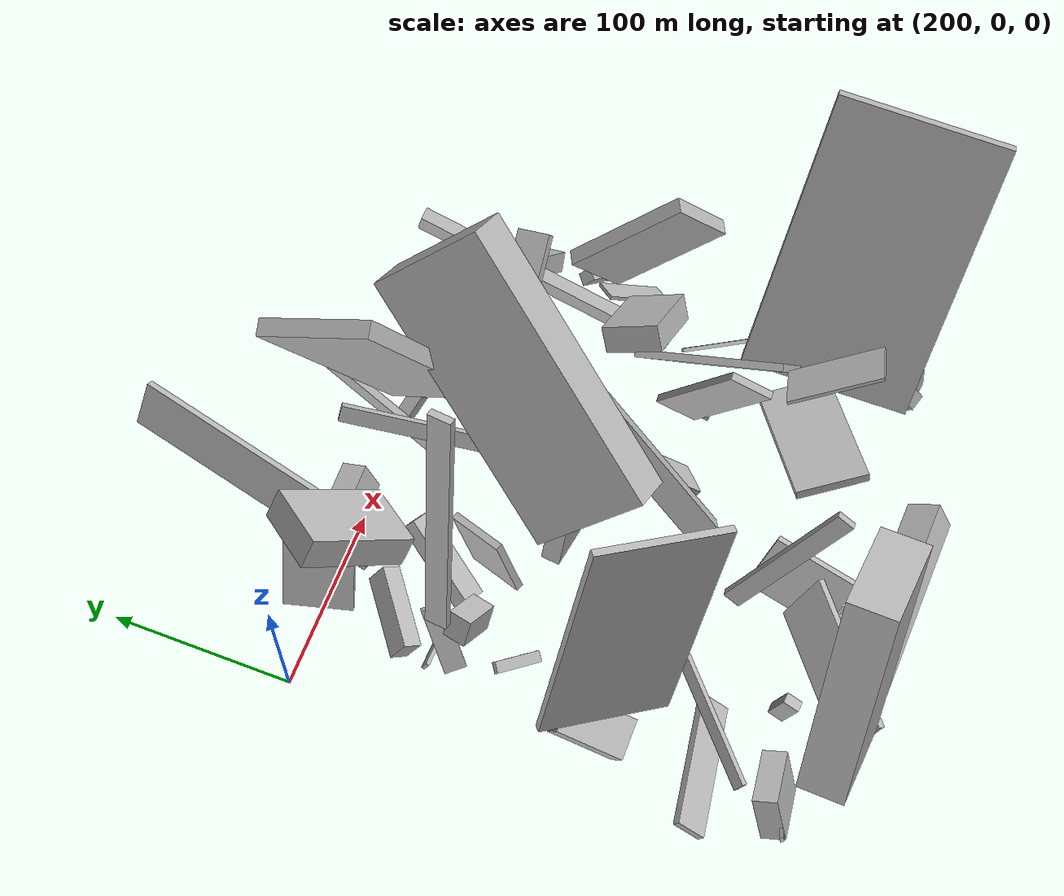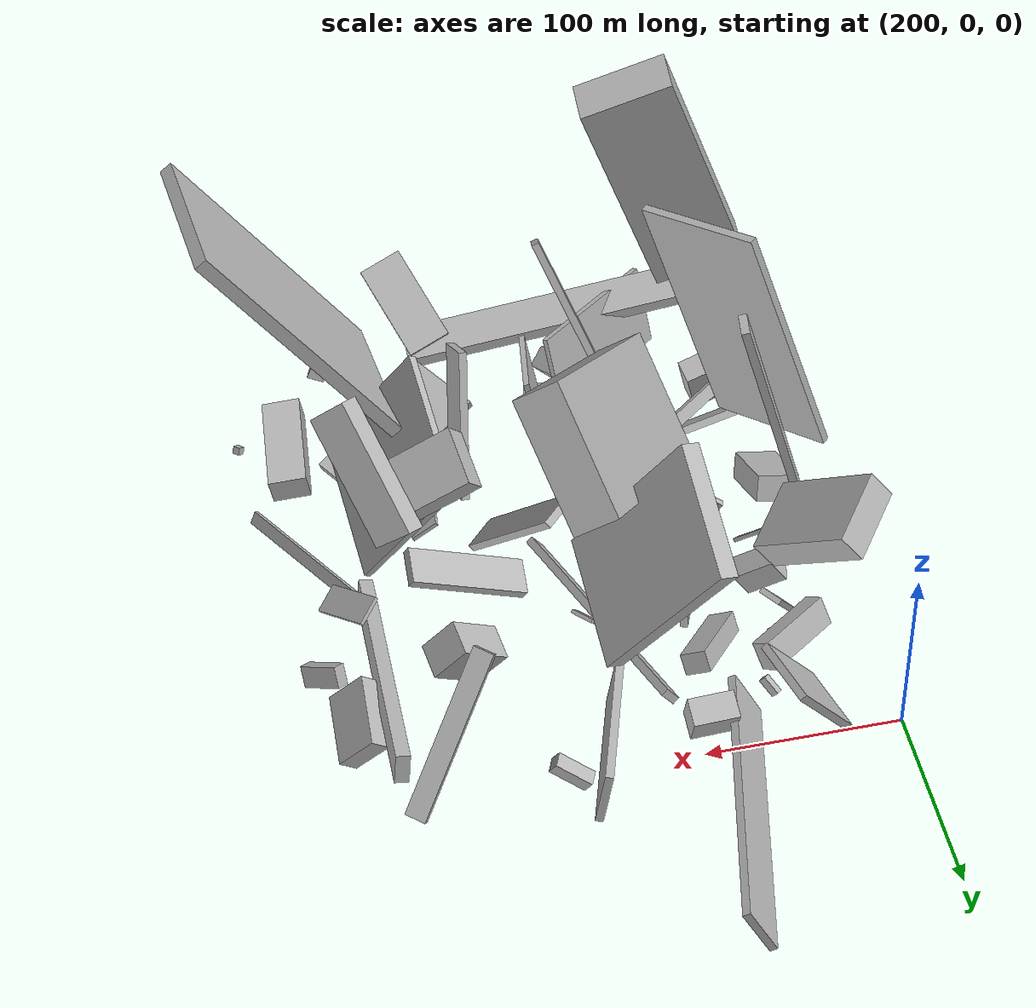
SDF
<sdf version="1.6">
 <world name="default">
  <model name="building_5">
   <static>0</static>
   <pose>366.93796762581417 -129.00037148774234 48.577309955742344 -2.7679729090759224 -0.8304152403304764 2.0013015284365134</pose>
   <link name="link">
    <gravity>0</gravity>
    <pose>0 0 2.0 0 0 0</pose>
    <collision name="collision"><geometry><box><size>98 19 4</size></box></geometry></collision>
    <visual name="visual">
     <cast_shadows>0</cast_shadows>
     <geometry><box><size>98 19 4</size></box></geometry>
     <material>
      <script>
       <uri>model://HANNAS_wall/materials/scripts</uri>
       <uri>model://HANNAS_wall/materials/textures</uri>
       <name>vrc/HANNAS_wall</name>
      </script>
     </material>
    </visual>
   </link>
  </model>
  <model name="building_7">
   <static>0</static>
   <pose>348.01590261600785 -30.969448456318037 88.29815140041796 -0.30418612962401714 0.4548619788155713 1.6481128041305757</pose>
   <link name="link">
    <gravity>0</gravity>
    <pose>0 0 59.0 0 0 0</pose>
    <collision name="collision"><geometry><box><size>64 9 118</size></box></geometry></collision>
    <visual name="visual">
     <cast_shadows>0</cast_shadows>
     <geometry><box><size>64 9 118</size></box></geometry>
     <material>
      <script>
       <uri>model://HANNAS_wall/materials/scripts</uri>
       <uri>model://HANNAS_wall/materials/textures</uri>
       <name>vrc/HANNAS_wall</name>
      </script>
     </material>
    </visual>
   </link>
  </model>
  <model name="building_13">
   <static>0</static>
   <pose>303.5498627580629 -202.1273397119324 62.30362091075866 0.4281541827251762 -0.4826214191146808 1.4194697516153478</pose>
   <link name="link">
    <gravity>0</gravity>
    <pose>0 0 42.5 0 0 0</pose>
    <collision name="collision"><geometry><box><size>10 4 85</size></box></geometry></collision>
    <visual name="visual">
     <cast_shadows>0</cast_shadows>
     <geometry><box><size>10 4 85</size></box></geometry>
     <material>
      <script>
       <uri>model://HANNAS_wall/materials/scripts</uri>
       <uri>model://HANNAS_wall/materials/textures</uri>
       <name>vrc/HANNAS_wall</name>
      </script>
     </material>
    </visual>
   </link>
  </model>
  <model name="building_14">
   <static>0</static>
   <pose>338.52106458638247 -30.991828954077725 29.410397892295503 -1.338100842568727 -0.15729105979023997 -0.32407212823067116</pose>
   <link name="link">
    <gravity>0</gravity>
    <pose>0 0 46.5 0 0 0</pose>
    <collision name="collision"><geometry><box><size>4 26 93</size></box></geometry></collision>
    <visual name="visual">
     <cast_shadows>0</cast_shadows>
     <geometry><box><size>4 26 93</size></box></geometry>
     <material>
      <script>
       <uri>model://HANNAS_wall/materials/scripts</uri>
       <uri>model://HANNAS_wall/materials/textures</uri>
       <name>vrc/HANNAS_wall</name>
      </script>
     </material>
    </visual>
   </link>
  </model>
  <model name="building_16">
   <static>0</static>
   <pose>253.31720954136728 2.3002131281182394 39.780277177644976 -0.01482352069662092 -0.9229812678496938 0.27385160361569905</pose>
   <link name="link">
    <gravity>0</gravity>
    <pose>0 0 2.0 0 0 0</pose>
    <collision name="collision"><geometry><box><size>47 37 4</size></box></geometry></collision>
    <visual name="visual">
     <cast_shadows>0</cast_shadows>
     <geometry><box><size>47 37 4</size></box></geometry>
     <material>
      <script>
       <uri>model://HANNAS_wall/materials/scripts</uri>
       <uri>model://HANNAS_wall/materials/textures</uri>
       <name>vrc/HANNAS_wall</name>
      </script>
     </material>
    </visual>
   </link>
  </model>
  <model name="building_18">
   <static>0</static>
   <pose>255.98294651979657 -143.66773095367154 20.143360686291402 -1.0476216306297381 0.12492093657156894 -1.8495851556932774</pose>
   <link name="link">
    <gravity>0</gravity>
    <pose>0 0 32.5 0 0 0</pose>
    <collision name="collision"><geometry><box><size>4 4 65</size></box></geometry></collision>
    <visual name="visual">
     <cast_shadows>0</cast_shadows>
     <geometry><box><size>4 4 65</size></box></geometry>
     <material>
      <script>
       <uri>model://HANNAS_wall/materials/scripts</uri>
       <uri>model://HANNAS_wall/materials/textures</uri>
       <name>vrc/HANNAS_wall</name>
      </script>
     </material>
    </visual>
   </link>
  </model>
  <model name="building_19">
   <static>0</static>
   <pose>233.4228596078339 -72.72268597515381 78.13247146226202 -0.2635942836586963 -0.09601195973758359 -1.693818515565837</pose>
   <link name="link">
    <gravity>0</gravity>
    <pose>0 0 75.0 0 0 0</pose>
    <collision name="collision"><geometry><box><size>12 4 150</size></box></geometry></collision>
    <visual name="visual">
     <cast_shadows>0</cast_shadows>
     <geometry><box><size>12 4 150</size></box></geometry>
     <material>
      <script>
       <uri>model://HANNAS_wall/materials/scripts</uri>
       <uri>model://HANNAS_wall/materials/textures</uri>
       <name>vrc/HANNAS_wall</name>
      </script>
     </material>
    </visual>
   </link>
  </model>
  <model name="building_20">
   <static>0</static>
   <pose>393.7164438287608 -140.93135978355008 61.7795820910733 0.16048409968176683 0.5082068844359077 -1.4412710564936078</pose>
   <link name="link">
    <gravity>0</gravity>
    <pose>0 0 37.5 0 0 0</pose>
    <collision name="collision"><geometry><box><size>24 4 75</size></box></geometry></collision>
    <visual name="visual">
     <cast_shadows>0</cast_shadows>
     <geometry><box><size>24 4 75</size></box></geometry>
     <material>
      <script>
       <uri>model://HANNAS_wall/materials/scripts</uri>
       <uri>model://HANNAS_wall/materials/textures</uri>
       <name>vrc/HANNAS_wall</name>
      </script>
     </material>
    </visual>
   </link>
  </model>
  <model name="building_21">
   <static>0</static>
   <pose>230.0842074939692 -208.09408159664707 22.94398390310819 -2.2755186249988264 -0.14356960257799212 -2.9904671393988087</pose>
   <link name="link">
    <gravity>0</gravity>
    <pose>0 0 9.0 0 0 0</pose>
    <collision name="collision"><geometry><box><size>73 4 18</size></box></geometry></collision>
    <visual name="visual">
     <cast_shadows>0</cast_shadows>
     <geometry><box><size>73 4 18</size></box></geometry>
     <material>
      <script>
       <uri>model://HANNAS_wall/materials/scripts</uri>
       <uri>model://HANNAS_wall/materials/textures</uri>
       <name>vrc/HANNAS_wall</name>
      </script>
     </material>
    </visual>
   </link>
  </model>
  <model name="building_22">
   <static>0</static>
   <pose>237.8671128048006 -275.3264804529206 78.6715799147138 0.3375347821358153 0.08022363856202351 1.5163037522461518</pose>
   <link name="link">
    <gravity>0</gravity>
    <pose>0 0 66.5 0 0 0</pose>
    <collision name="collision"><geometry><box><size>24 49 133</size></box></geometry></collision>
    <visual name="visual">
     <cast_shadows>0</cast_shadows>
     <geometry><box><size>24 49 133</size></box></geometry>
     <material>
      <script>
       <uri>model://HANNAS_wall/materials/scripts</uri>
       <uri>model://HANNAS_wall/materials/textures</uri>
       <name>vrc/HANNAS_wall</name>
      </script>
     </material>
    </visual>
   </link>
  </model>
  <model name="building_27">
   <static>0</static>
   <pose>423.2838466854882 -208.67709415920035 81.82649826413133 0.1413094886405997 0.6122159057931443 0.15823957279419285</pose>
   <link name="link">
    <gravity>0</gravity>
    <pose>0 0 75.0 0 0 0</pose>
    <collision name="collision"><geometry><box><size>7 88 150</size></box></geometry></collision>
    <visual name="visual">
     <cast_shadows>0</cast_shadows>
     <geometry><box><size>7 88 150</size></box></geometry>
     <material>
      <script>
       <uri>model://HANNAS_wall/materials/scripts</uri>
       <uri>model://HANNAS_wall/materials/textures</uri>
       <name>vrc/HANNAS_wall</name>
      </script>
     </material>
    </visual>
   </link>
  </model>
  <model name="building_30">
   <static>0</static>
   <pose>433.81226036326905 -79.0754404706614 102.59673930444904 -0.09920087051929398 -0.8556372474861931 2.1366737547197134</pose>
   <link name="link">
    <gravity>0</gravity>
    <pose>0 0 34.5 0 0 0</pose>
    <collision name="collision"><geometry><box><size>38 8 69</size></box></geometry></collision>
    <visual name="visual">
     <cast_shadows>0</cast_shadows>
     <geometry><box><size>38 8 69</size></box></geometry>
     <material>
      <script>
       <uri>model://HANNAS_wall/materials/scripts</uri>
       <uri>model://HANNAS_wall/materials/textures</uri>
       <name>vrc/HANNAS_wall</name>
      </script>
     </material>
    </visual>
   </link>
  </model>
  <model name="building_31">
   <static>0</static>
   <pose>323.8296388341633 -179.14422340837856 81.77296150881438 -0.615209230431995 0.5990761632010638 0.41969506388018735</pose>
   <link name="link">
    <gravity>0</gravity>
    <pose>0 0 71.0 0 0 0</pose>
    <collision name="collision"><geometry><box><size>9 15 142</size></box></geometry></collision>
    <visual name="visual">
     <cast_shadows>0</cast_shadows>
     <geometry><box><size>9 15 142</size></box></geometry>
     <material>
      <script>
       <uri>model://HANNAS_wall/materials/scripts</uri>
       <uri>model://HANNAS_wall/materials/textures</uri>
       <name>vrc/HANNAS_wall</name>
      </script>
     </material>
    </visual>
   </link>
  </model>
  <model name="building_32">
   <static>0</static>
   <pose>283.65210716667843 -90.75363850722815 48.33629093482091 -3.0502330619504185 1.1958537590814935 -1.8912091224020218</pose>
   <link name="link">
    <gravity>0</gravity>
    <pose>0 0 17.5 0 0 0</pose>
    <collision name="collision"><geometry><box><size>37 4 35</size></box></geometry></collision>
    <visual name="visual">
     <cast_shadows>0</cast_shadows>
     <geometry><box><size>37 4 35</size></box></geometry>
     <material>
      <script>
       <uri>model://HANNAS_wall/materials/scripts</uri>
       <uri>model://HANNAS_wall/materials/textures</uri>
       <name>vrc/HANNAS_wall</name>
      </script>
     </material>
    </visual>
   </link>
  </model>
  <model name="building_34">
   <static>0</static>
   <pose>300.5026610406594 -131.03983425655088 114.70064448822038 -0.7383841029522928 -0.7566949573000991 -1.1854946712340908</pose>
   <link name="link">
    <gravity>0</gravity>
    <pose>0 0 75.0 0 0 0</pose>
    <collision name="collision"><geometry><box><size>67 23 150</size></box></geometry></collision>
    <visual name="visual">
     <cast_shadows>0</cast_shadows>
     <geometry><box><size>67 23 150</size></box></geometry>
     <material>
      <script>
       <uri>model://HANNAS_wall/materials/scripts</uri>
       <uri>model://HANNAS_wall/materials/textures</uri>
       <name>vrc/HANNAS_wall</name>
      </script>
     </material>
    </visual>
   </link>
  </model>
  <model name="building_36">
   <static>0</static>
   <pose>277.0481197221919 -16.38829590633877 21.1454384522796 -1.436703308358964 -1.0622199861069026 -0.3310575167198313</pose>
   <link name="link">
    <gravity>0</gravity>
    <pose>0 0 75.0 0 0 0</pose>
    <collision name="collision"><geometry><box><size>28 4 150</size></box></geometry></collision>
    <visual name="visual">
     <cast_shadows>0</cast_shadows>
     <geometry><box><size>28 4 150</size></box></geometry>
     <material>
      <script>
       <uri>model://HANNAS_wall/materials/scripts</uri>
       <uri>model://HANNAS_wall/materials/textures</uri>
       <name>vrc/HANNAS_wall</name>
      </script>
     </material>
    </visual>
   </link>
  </model>
  <model name="building_43">
   <static>0</static>
   <pose>422.1462973297976 -123.29589621330148 56.18898946469028 -0.9815457062298355 -0.9810275654083641 2.7188622036323804</pose>
   <link name="link">
    <gravity>0</gravity>
    <pose>0 0 39.5 0 0 0</pose>
    <collision name="collision"><geometry><box><size>84 4 79</size></box></geometry></collision>
    <visual name="visual">
     <cast_shadows>0</cast_shadows>
     <geometry><box><size>84 4 79</size></box></geometry>
     <material>
      <script>
       <uri>model://HANNAS_wall/materials/scripts</uri>
       <uri>model://HANNAS_wall/materials/textures</uri>
       <name>vrc/HANNAS_wall</name>
      </script>
     </material>
    </visual>
   </link>
  </model>
  <model name="building_44">
   <static>0</static>
   <pose>428.2304037989306 -14.65644072804095 34.449330334265674 1.7291601171601512 0.7612280484340336 -2.1265610803290453</pose>
   <link name="link">
    <gravity>0</gravity>
    <pose>0 0 5.5 0 0 0</pose>
    <collision name="collision"><geometry><box><size>4 88 11</size></box></geometry></collision>
    <visual name="visual">
     <cast_shadows>0</cast_shadows>
     <geometry><box><size>4 88 11</size></box></geometry>
     <material>
      <script>
       <uri>model://HANNAS_wall/materials/scripts</uri>
       <uri>model://HANNAS_wall/materials/textures</uri>
       <name>vrc/HANNAS_wall</name>
      </script>
     </material>
    </visual>
   </link>
  </model>
  <model name="building_50">
   <static>0</static>
   <pose>396.22445277598064 -281.97709241901384 33.79744834901935 -1.3875249333521755 0.5524911589988926 1.6293658633441293</pose>
   <link name="link">
    <gravity>0</gravity>
    <pose>0 0 75.0 0 0 0</pose>
    <collision name="collision"><geometry><box><size>18 17 150</size></box></geometry></collision>
    <visual name="visual">
     <cast_shadows>0</cast_shadows>
     <geometry><box><size>18 17 150</size></box></geometry>
     <material>
      <script>
       <uri>model://HANNAS_wall/materials/scripts</uri>
       <uri>model://HANNAS_wall/materials/textures</uri>
       <name>vrc/HANNAS_wall</name>
      </script>
     </material>
    </visual>
   </link>
  </model>
  <model name="building_66">
   <static>0</static>
   <pose>229.3548520375216 -154.1556440836538 16.619047999451578 -0.4320038193746379 0.16477779496881953 3.138801024452244</pose>
   <link name="link">
    <gravity>0</gravity>
    <pose>0 0 7.0 0 0 0</pose>
    <collision name="collision"><geometry><box><size>22 38 14</size></box></geometry></collision>
    <visual name="visual">
     <cast_shadows>0</cast_shadows>
     <geometry><box><size>22 38 14</size></box></geometry>
     <material>
      <script>
       <uri>model://HANNAS_wall/materials/scripts</uri>
       <uri>model://HANNAS_wall/materials/textures</uri>
       <name>vrc/HANNAS_wall</name>
      </script>
     </material>
    </visual>
   </link>
  </model>
  <model name="building_75">
   <static>0</static>
   <pose>308.8115781653693 -109.81914074569218 43.379813627418116 -0.01760692053308227 0.3444306415014796 -0.09398003866354587</pose>
   <link name="link">
    <gravity>0</gravity>
    <pose>0 0 33.5 0 0 0</pose>
    <collision name="collision"><geometry><box><size>30 10 67</size></box></geometry></collision>
    <visual name="visual">
     <cast_shadows>0</cast_shadows>
     <geometry><box><size>30 10 67</size></box></geometry>
     <material>
      <script>
       <uri>model://HANNAS_wall/materials/scripts</uri>
       <uri>model://HANNAS_wall/materials/textures</uri>
       <name>vrc/HANNAS_wall</name>
      </script>
     </material>
    </visual>
   </link>
  </model>
  <model name="building_76">
   <static>0</static>
   <pose>444.4208361729633 -192.3690520159992 26.43797393648901 1.2127447557770785 -0.09501730758960644 -0.9722656896024466</pose>
   <link name="link">
    <gravity>0</gravity>
    <pose>0 0 38.0 0 0 0</pose>
    <collision name="collision"><geometry><box><size>39 5 76</size></box></geometry></collision>
    <visual name="visual">
     <cast_shadows>0</cast_shadows>
     <geometry><box><size>39 5 76</size></box></geometry>
     <material>
      <script>
       <uri>model://HANNAS_wall/materials/scripts</uri>
       <uri>model://HANNAS_wall/materials/textures</uri>
       <name>vrc/HANNAS_wall</name>
      </script>
     </material>
    </visual>
   </link>
  </model>
  <model name="building_77">
   <static>0</static>
   <pose>453.4701211370963 -46.735038114236744 42.74802372080548 2.011169089144791 -1.3036769754141946 -2.06478779055746</pose>
   <link name="link">
    <gravity>0</gravity>
    <pose>0 0 3.5 0 0 0</pose>
    <collision name="collision"><geometry><box><size>15 150 7</size></box></geometry></collision>
    <visual name="visual">
     <cast_shadows>0</cast_shadows>
     <geometry><box><size>15 150 7</size></box></geometry>
     <material>
      <script>
       <uri>model://HANNAS_wall/materials/scripts</uri>
       <uri>model://HANNAS_wall/materials/textures</uri>
       <name>vrc/HANNAS_wall</name>
      </script>
     </material>
    </visual>
   </link>
  </model>
  <model name="building_81">
   <static>0</static>
   <pose>338.8439573621389 -51.97973178841937 50.03166643406547 0.6355382492141831 -0.23349661284458312 1.8123372507760633</pose>
   <link name="link">
    <gravity>0</gravity>
    <pose>0 0 4.5 0 0 0</pose>
    <collision name="collision"><geometry><box><size>150 4 9</size></box></geometry></collision>
    <visual name="visual">
     <cast_shadows>0</cast_shadows>
     <geometry><box><size>150 4 9</size></box></geometry>
     <material>
      <script>
       <uri>model://HANNAS_wall/materials/scripts</uri>
       <uri>model://HANNAS_wall/materials/textures</uri>
       <name>vrc/HANNAS_wall</name>
      </script>
     </material>
    </visual>
   </link>
  </model>
  <model name="building_88">
   <static>0</static>
   <pose>494.7210577142171 -247.55431232617036 7.970193450586371 -0.5256505137254391 -0.12503597108748857 2.3441400192682407</pose>
   <link name="link">
    <gravity>0</gravity>
    <pose>0 0 2.0 0 0 0</pose>
    <collision name="collision"><geometry><box><size>4 4 4</size></box></geometry></collision>
    <visual name="visual">
     <cast_shadows>0</cast_shadows>
     <geometry><box><size>4 4 4</size></box></geometry>
     <material>
      <script>
       <uri>model://HANNAS_wall/materials/scripts</uri>
       <uri>model://HANNAS_wall/materials/textures</uri>
       <name>vrc/HANNAS_wall</name>
      </script>
     </material>
    </visual>
   </link>
  </model>
  <model name="building_96">
   <static>0</static>
   <pose>247.39036681998553 -165.81352190068662 123.0658365702576 0.8723647912762169 -1.261299031339631 -0.19804682895105832</pose>
   <link name="link">
    <gravity>0</gravity>
    <pose>0 0 2.0 0 0 0</pose>
    <collision name="collision"><geometry><box><size>142 69 4</size></box></geometry></collision>
    <visual name="visual">
     <cast_shadows>0</cast_shadows>
     <geometry><box><size>142 69 4</size></box></geometry>
     <material>
      <script>
       <uri>model://HANNAS_wall/materials/scripts</uri>
       <uri>model://HANNAS_wall/materials/textures</uri>
       <name>vrc/HANNAS_wall</name>
      </script>
     </material>
    </visual>
   </link>
  </model>
  <model name="building_101">
   <static>0</static>
   <pose>405.6891085910688 -215.27437296252435 126.78397519132474 0.5057825276663976 -0.319359970605428 -2.9110335004053156</pose>
   <link name="link">
    <gravity>0</gravity>
    <pose>0 0 1.0 0 0 0</pose>
    <collision name="collision"><geometry><box><size>22 50 2</size></box></geometry></collision>
    <visual name="visual">
     <cast_shadows>0</cast_shadows>
     <geometry><box><size>22 50 2</size></box></geometry>
     <material>
      <script>
       <uri>model://HANNAS_wall/materials/scripts</uri>
       <uri>model://HANNAS_wall/materials/textures</uri>
       <name>vrc/HANNAS_wall</name>
      </script>
     </material>
    </visual>
   </link>
  </model>
  <model name="building_102">
   <static>0</static>
   <pose>334.5742088772754 -102.46947358058483 21.509685683453995 -3.0150077298598363 -0.5082029796953539 0.8732665417859603</pose>
   <link name="link">
    <gravity>0</gravity>
    <pose>0 0 1.0 0 0 0</pose>
    <collision name="collision"><geometry><box><size>2 2 2</size></box></geometry></collision>
    <visual name="visual">
     <cast_shadows>0</cast_shadows>
     <geometry><box><size>2 2 2</size></box></geometry>
     <material>
      <script>
       <uri>model://HANNAS_wall/materials/scripts</uri>
       <uri>model://HANNAS_wall/materials/textures</uri>
       <name>vrc/HANNAS_wall</name>
      </script>
     </material>
    </visual>
   </link>
  </model>
  <model name="building_103">
   <static>0</static>
   <pose>472.9114905393947 -31.384596396739227 23.98224552280967 -0.3163307415577276 -0.6979741669103613 0.1718838482530008</pose>
   <link name="link">
    <gravity>0</gravity>
    <pose>0 0 12.0 0 0 0</pose>
    <collision name="collision"><geometry><box><size>11 36 24</size></box></geometry></collision>
    <visual name="visual">
     <cast_shadows>0</cast_shadows>
     <geometry><box><size>11 36 24</size></box></geometry>
     <material>
      <script>
       <uri>model://HANNAS_wall/materials/scripts</uri>
       <uri>model://HANNAS_wall/materials/textures</uri>
       <name>vrc/HANNAS_wall</name>
      </script>
     </material>
    </visual>
   </link>
  </model>
  <model name="building_107">
   <static>0</static>
   <pose>245.5733513215945 -68.73409851793642 22.42397693010564 -0.19544770180164475 -0.9141619872797258 0.8413491688812188</pose>
   <link name="link">
    <gravity>0</gravity>
    <pose>0 0 1.5 0 0 0</pose>
    <collision name="collision"><geometry><box><size>41 12 3</size></box></geometry></collision>
    <visual name="visual">
     <cast_shadows>0</cast_shadows>
     <geometry><box><size>41 12 3</size></box></geometry>
     <material>
      <script>
       <uri>model://HANNAS_wall/materials/scripts</uri>
       <uri>model://HANNAS_wall/materials/textures</uri>
       <name>vrc/HANNAS_wall</name>
      </script>
     </material>
    </visual>
   </link>
  </model>
  <model name="building_120">
   <static>0</static>
   <pose>295.6655389697771 -261.5399872598388 39.72745301143922 1.2681636249010337 0.06684753229733487 -2.4420815225267525</pose>
   <link name="link">
    <gravity>0</gravity>
    <pose>0 0 1.5 0 0 0</pose>
    <collision name="collision"><geometry><box><size>80 44 3</size></box></geometry></collision>
    <visual name="visual">
     <cast_shadows>0</cast_shadows>
     <geometry><box><size>80 44 3</size></box></geometry>
     <material>
      <script>
       <uri>model://HANNAS_wall/materials/scripts</uri>
       <uri>model://HANNAS_wall/materials/textures</uri>
       <name>vrc/HANNAS_wall</name>
      </script>
     </material>
    </visual>
   </link>
  </model>
  <model name="building_122">
   <static>0</static>
   <pose>235.64141680731746 -249.07616619788706 22.92016150430226 2.8483417028690163 -0.27981532750121985 -1.3710653168772926</pose>
   <link name="link">
    <gravity>0</gravity>
    <pose>0 0 16.5 0 0 0</pose>
    <collision name="collision"><geometry><box><size>13 31 33</size></box></geometry></collision>
    <visual name="visual">
     <cast_shadows>0</cast_shadows>
     <geometry><box><size>13 31 33</size></box></geometry>
     <material>
      <script>
       <uri>model://HANNAS_wall/materials/scripts</uri>
       <uri>model://HANNAS_wall/materials/textures</uri>
       <name>vrc/HANNAS_wall</name>
      </script>
     </material>
    </visual>
   </link>
  </model>
  <model name="building_124">
   <static>0</static>
   <pose>483.47174510101644 -76.80306908297806 18.072619734066222 -0.6436931812952394 0.9905185696879125 1.7130827055113165</pose>
   <link name="link">
    <gravity>0</gravity>
    <pose>0 0 11.0 0 0 0</pose>
    <collision name="collision"><geometry><box><size>11 7 22</size></box></geometry></collision>
    <visual name="visual">
     <cast_shadows>0</cast_shadows>
     <geometry><box><size>11 7 22</size></box></geometry>
     <material>
      <script>
       <uri>model://HANNAS_wall/materials/scripts</uri>
       <uri>model://HANNAS_wall/materials/textures</uri>
       <name>vrc/HANNAS_wall</name>
      </script>
     </material>
    </visual>
   </link>
  </model>
  <model name="building_138">
   <static>0</static>
   <pose>290.8009034595328 -54.49058408203257 18.339728929442895 1.1153273699770911 0.3967219456418036 -2.140968309277643</pose>
   <link name="link">
    <gravity>0</gravity>
    <pose>0 0 6.5 0 0 0</pose>
    <collision name="collision"><geometry><box><size>51 11 13</size></box></geometry></collision>
    <visual name="visual">
     <cast_shadows>0</cast_shadows>
     <geometry><box><size>51 11 13</size></box></geometry>
     <material>
      <script>
       <uri>model://HANNAS_wall/materials/scripts</uri>
       <uri>model://HANNAS_wall/materials/textures</uri>
       <name>vrc/HANNAS_wall</name>
      </script>
     </material>
    </visual>
   </link>
  </model>
  <model name="building_145">
   <static>0</static>
   <pose>240.59090301444314 -112.36338520977301 31.73666527410242 1.093368988491158 -0.7337006371703388 2.526810928665132</pose>
   <link name="link">
    <gravity>0</gravity>
    <pose>0 0 3.0 0 0 0</pose>
    <collision name="collision"><geometry><box><size>36 2 6</size></box></geometry></collision>
    <visual name="visual">
     <cast_shadows>0</cast_shadows>
     <geometry><box><size>36 2 6</size></box></geometry>
     <material>
      <script>
       <uri>model://HANNAS_wall/materials/scripts</uri>
       <uri>model://HANNAS_wall/materials/textures</uri>
       <name>vrc/HANNAS_wall</name>
      </script>
     </material>
    </visual>
   </link>
  </model>
  <model name="building_151">
   <static>0</static>
   <pose>434.8042227029657 -46.312312705884075 116.6668465368403 -2.5604723894324826 -1.0369864383557454 2.584883812874379</pose>
   <link name="link">
    <gravity>0</gravity>
    <pose>0 0 30.5 0 0 0</pose>
    <collision name="collision"><geometry><box><size>5 18 61</size></box></geometry></collision>
    <visual name="visual">
     <cast_shadows>0</cast_shadows>
     <geometry><box><size>5 18 61</size></box></geometry>
     <material>
      <script>
       <uri>model://HANNAS_wall/materials/scripts</uri>
       <uri>model://HANNAS_wall/materials/textures</uri>
       <name>vrc/HANNAS_wall</name>
      </script>
     </material>
    </visual>
   </link>
  </model>
  <model name="building_153">
   <static>0</static>
   <pose>480.0791969167379 -230.2547732532878 22.414603272358995 1.4251216055462033 -0.16103871556900434 -1.663019617792307</pose>
   <link name="link">
    <gravity>0</gravity>
    <pose>0 0 10.0 0 0 0</pose>
    <collision name="collision"><geometry><box><size>52 16 20</size></box></geometry></collision>
    <visual name="visual">
     <cast_shadows>0</cast_shadows>
     <geometry><box><size>52 16 20</size></box></geometry>
     <material>
      <script>
       <uri>model://HANNAS_wall/materials/scripts</uri>
       <uri>model://HANNAS_wall/materials/textures</uri>
       <name>vrc/HANNAS_wall</name>
      </script>
     </material>
    </visual>
   </link>
  </model>
  <model name="building_156">
   <static>0</static>
   <pose>396.11192160871497 -274.75629476914986 7.820499211575768 -0.204628323121381 0.2249224599622033 -1.6104676760371168</pose>
   <link name="link">
    <gravity>0</gravity>
    <pose>0 0 3.5 0 0 0</pose>
    <collision name="collision"><geometry><box><size>2 3 7</size></box></geometry></collision>
    <visual name="visual">
     <cast_shadows>0</cast_shadows>
     <geometry><box><size>2 3 7</size></box></geometry>
     <material>
      <script>
       <uri>model://HANNAS_wall/materials/scripts</uri>
       <uri>model://HANNAS_wall/materials/textures</uri>
       <name>vrc/HANNAS_wall</name>
      </script>
     </material>
    </visual>
   </link>
  </model>
  <model name="building_163">
   <static>0</static>
   <pose>417.0941785750808 -149.41676041761255 31.595187779958227 -0.9473656532860814 -0.14241402411272064 1.465095042774142</pose>
   <link name="link">
    <gravity>0</gravity>
    <pose>0 0 7.5 0 0 0</pose>
    <collision name="collision"><geometry><box><size>15 2 15</size></box></geometry></collision>
    <visual name="visual">
     <cast_shadows>0</cast_shadows>
     <geometry><box><size>15 2 15</size></box></geometry>
     <material>
      <script>
       <uri>model://HANNAS_wall/materials/scripts</uri>
       <uri>model://HANNAS_wall/materials/textures</uri>
       <name>vrc/HANNAS_wall</name>
      </script>
     </material>
    </visual>
   </link>
  </model>
  <model name="building_165">
   <static>0</static>
   <pose>463.5750856630873 -89.58501303993765 41.13789157573735 1.058972404374276 0.4568987540791027 -1.0078631468598023</pose>
   <link name="link">
    <gravity>0</gravity>
    <pose>0 0 7.5 0 0 0</pose>
    <collision name="collision"><geometry><box><size>36 2 15</size></box></geometry></collision>
    <visual name="visual">
     <cast_shadows>0</cast_shadows>
     <geometry><box><size>36 2 15</size></box></geometry>
     <material>
      <script>
       <uri>model://HANNAS_wall/materials/scripts</uri>
       <uri>model://HANNAS_wall/materials/textures</uri>
       <name>vrc/HANNAS_wall</name>
      </script>
     </material>
    </visual>
   </link>
  </model>
  <model name="building_168">
   <static>0</static>
   <pose>365.36539269739967 2.3244064557025115 9.09926906883371 3.0563583125459086 -0.5778282061543747 -0.35555410908471774</pose>
   <link name="link">
    <gravity>0</gravity>
    <pose>0 0 3.5 0 0 0</pose>
    <collision name="collision"><geometry><box><size>21 8 7</size></box></geometry></collision>
    <visual name="visual">
     <cast_shadows>0</cast_shadows>
     <geometry><box><size>21 8 7</size></box></geometry>
     <material>
      <script>
       <uri>model://HANNAS_wall/materials/scripts</uri>
       <uri>model://HANNAS_wall/materials/textures</uri>
       <name>vrc/HANNAS_wall</name>
      </script>
     </material>
    </visual>
   </link>
  </model>
  <model name="building_172">
   <static>0</static>
   <pose>471.78582181520994 -161.90678000041322 11.653336854431235 -1.067322934458159 0.019098985306180198 -1.0292821772169598</pose>
   <link name="link">
    <gravity>0</gravity>
    <pose>0 0 1.0 0 0 0</pose>
    <collision name="collision"><geometry><box><size>80 7 2</size></box></geometry></collision>
    <visual name="visual">
     <cast_shadows>0</cast_shadows>
     <geometry><box><size>80 7 2</size></box></geometry>
     <material>
      <script>
       <uri>model://HANNAS_wall/materials/scripts</uri>
       <uri>model://HANNAS_wall/materials/textures</uri>
       <name>vrc/HANNAS_wall</name>
      </script>
     </material>
    </visual>
   </link>
  </model>
  <model name="building_174">
   <static>0</static>
   <pose>414.10489138332184 -65.67708539364207 21.50056823016461 0.6936577778181545 -0.27747888937619664 -1.3971462301106505</pose>
   <link name="link">
    <gravity>0</gravity>
    <pose>0 0 11.5 0 0 0</pose>
    <collision name="collision"><geometry><box><size>18 31 23</size></box></geometry></collision>
    <visual name="visual">
     <cast_shadows>0</cast_shadows>
     <geometry><box><size>18 31 23</size></box></geometry>
     <material>
      <script>
       <uri>model://HANNAS_wall/materials/scripts</uri>
       <uri>model://HANNAS_wall/materials/textures</uri>
       <name>vrc/HANNAS_wall</name>
      </script>
     </material>
    </visual>
   </link>
  </model>
  <model name="building_175">
   <static>0</static>
   <pose>343.17629079361603 -79.61882485468465 23.030386805924756 0.8198232032325811 0.12679429867222133 -0.9194036202950033</pose>
   <link name="link">
    <gravity>0</gravity>
    <pose>0 0 1.0 0 0 0</pose>
    <collision name="collision"><geometry><box><size>13 6 2</size></box></geometry></collision>
    <visual name="visual">
     <cast_shadows>0</cast_shadows>
     <geometry><box><size>13 6 2</size></box></geometry>
     <material>
      <script>
       <uri>model://HANNAS_wall/materials/scripts</uri>
       <uri>model://HANNAS_wall/materials/textures</uri>
       <name>vrc/HANNAS_wall</name>
      </script>
     </material>
    </visual>
   </link>
  </model>
  <model name="building_179">
   <static>0</static>
   <pose>310.4626202390356 3.7128125866958945 33.637027942310546 -1.4858520915706914 -1.1951897867209378 1.515955045360188</pose>
   <link name="link">
    <gravity>0</gravity>
    <pose>0 0 11.5 0 0 0</pose>
    <collision name="collision"><geometry><box><size>19 14 23</size></box></geometry></collision>
    <visual name="visual">
     <cast_shadows>0</cast_shadows>
     <geometry><box><size>19 14 23</size></box></geometry>
     <material>
      <script>
       <uri>model://HANNAS_wall/materials/scripts</uri>
       <uri>model://HANNAS_wall/materials/textures</uri>
       <name>vrc/HANNAS_wall</name>
      </script>
     </material>
    </visual>
   </link>
  </model>
  <model name="building_180">
   <static>0</static>
   <pose>274.36702876636605 -245.00074397898373 26.109888131364816 -1.1103859083425407 1.184207916628918 1.9329199419853116</pose>
   <link name="link">
    <gravity>0</gravity>
    <pose>0 0 3.0 0 0 0</pose>
    <collision name="collision"><geometry><box><size>17 9 6</size></box></geometry></collision>
    <visual name="visual">
     <cast_shadows>0</cast_shadows>
     <geometry><box><size>17 9 6</size></box></geometry>
     <material>
      <script>
       <uri>model://HANNAS_wall/materials/scripts</uri>
       <uri>model://HANNAS_wall/materials/textures</uri>
       <name>vrc/HANNAS_wall</name>
      </script>
     </material>
    </visual>
   </link>
  </model>
  <model name="building_184">
   <static>0</static>
   <pose>244.2953825018885 -38.46248176447796 24.042496843301066 0.07529494137527996 0.5644096682245424 -0.8826462497608109</pose>
   <link name="link">
    <gravity>0</gravity>
    <pose>0 0 7.5 0 0 0</pose>
    <collision name="collision"><geometry><box><size>10 44 15</size></box></geometry></collision>
    <visual name="visual">
     <cast_shadows>0</cast_shadows>
     <geometry><box><size>10 44 15</size></box></geometry>
     <material>
      <script>
       <uri>model://HANNAS_wall/materials/scripts</uri>
       <uri>model://HANNAS_wall/materials/textures</uri>
       <name>vrc/HANNAS_wall</name>
      </script>
     </material>
    </visual>
   </link>
  </model>
  <model name="building_186">
   <static>0</static>
   <pose>229.8933824562373 -64.72783822634385 12.979216749455063 2.1717236628370906 0.9992619271934664 2.1157007034898343</pose>
   <link name="link">
    <gravity>0</gravity>
    <pose>0 0 11.0 0 0 0</pose>
    <collision name="collision"><geometry><box><size>5 2 22</size></box></geometry></collision>
    <visual name="visual">
     <cast_shadows>0</cast_shadows>
     <geometry><box><size>5 2 22</size></box></geometry>
     <material>
      <script>
       <uri>model://HANNAS_wall/materials/scripts</uri>
       <uri>model://HANNAS_wall/materials/textures</uri>
       <name>vrc/HANNAS_wall</name>
      </script>
     </material>
    </visual>
   </link>
  </model>
  <model name="building_190">
   <static>0</static>
   <pose>228.12394399802508 -3.919639262930179 147.76272011916663 -2.7175925041497084 0.8617706323482707 2.816348304570102</pose>
   <link name="link">
    <gravity>0</gravity>
    <pose>0 0 29.0 0 0 0</pose>
    <collision name="collision"><geometry><box><size>16 37 58</size></box></geometry></collision>
    <visual name="visual">
     <cast_shadows>0</cast_shadows>
     <geometry><box><size>16 37 58</size></box></geometry>
     <material>
      <script>
       <uri>model://HANNAS_wall/materials/scripts</uri>
       <uri>model://HANNAS_wall/materials/textures</uri>
       <name>vrc/HANNAS_wall</name>
      </script>
     </material>
    </visual>
   </link>
  </model>
  <model name="building_191">
   <static>0</static>
   <pose>448.800440435266 -255.6404971946233 48.03819984342266 -0.31594006046514933 0.4966442133709798 1.1155252586878215</pose>
   <link name="link">
    <gravity>0</gravity>
    <pose>0 0 23.0 0 0 0</pose>
    <collision name="collision"><geometry><box><size>4 9 46</size></box></geometry></collision>
    <visual name="visual">
     <cast_shadows>0</cast_shadows>
     <geometry><box><size>4 9 46</size></box></geometry>
     <material>
      <script>
       <uri>model://HANNAS_wall/materials/scripts</uri>
       <uri>model://HANNAS_wall/materials/textures</uri>
       <name>vrc/HANNAS_wall</name>
      </script>
     </material>
    </visual>
   </link>
  </model>
  <model name="building_200">
   <static>0</static>
   <pose>244.40016723332425 -77.43396490611326 44.73245696287423 2.951977741708604 -0.9667133728221762 -0.08296480969661843</pose>
   <link name="link">
    <gravity>0</gravity>
    <pose>0 0 11.0 0 0 0</pose>
    <collision name="collision"><geometry><box><size>15 13 22</size></box></geometry></collision>
    <visual name="visual">
     <cast_shadows>0</cast_shadows>
     <geometry><box><size>15 13 22</size></box></geometry>
     <material>
      <script>
       <uri>model://HANNAS_wall/materials/scripts</uri>
       <uri>model://HANNAS_wall/materials/textures</uri>
       <name>vrc/HANNAS_wall</name>
      </script>
     </material>
    </visual>
   </link>
  </model>
  <model name="building_209">
   <static>0</static>
   <pose>339.77673972897753 -209.1021129330706 35.76041525038723 -1.7397032979391318 -0.20057441403920426 3.0257280456730467</pose>
   <link name="link">
    <gravity>0</gravity>
    <pose>0 0 23.5 0 0 0</pose>
    <collision name="collision"><geometry><box><size>3 49 47</size></box></geometry></collision>
    <visual name="visual">
     <cast_shadows>0</cast_shadows>
     <geometry><box><size>3 49 47</size></box></geometry>
     <material>
      <script>
       <uri>model://HANNAS_wall/materials/scripts</uri>
       <uri>model://HANNAS_wall/materials/textures</uri>
       <name>vrc/HANNAS_wall</name>
      </script>
     </material>
    </visual>
   </link>
  </model>
  <model name="building_218">
   <static>0</static>
   <pose>414.1322969241288 -128.39248512405186 110.51782610285908 -2.2119600563882704 -0.8396499792724064 0.6756412186385798</pose>
   <link name="link">
    <gravity>0</gravity>
    <pose>0 0 15.0 0 0 0</pose>
    <collision name="collision"><geometry><box><size>14 40 30</size></box></geometry></collision>
    <visual name="visual">
     <cast_shadows>0</cast_shadows>
     <geometry><box><size>14 40 30</size></box></geometry>
     <material>
      <script>
       <uri>model://HANNAS_wall/materials/scripts</uri>
       <uri>model://HANNAS_wall/materials/textures</uri>
       <name>vrc/HANNAS_wall</name>
      </script>
     </material>
    </visual>
   </link>
  </model>
  <model name="building_225">
   <static>0</static>
   <pose>320.57306496547415 -265.9187054575359 22.218282225839005 -1.1311193505871546 -0.8406466114744762 0.15351067835108706</pose>
   <link name="link">
    <gravity>0</gravity>
    <pose>0 0 8.0 0 0 0</pose>
    <collision name="collision"><geometry><box><size>23 12 16</size></box></geometry></collision>
    <visual name="visual">
     <cast_shadows>0</cast_shadows>
     <geometry><box><size>23 12 16</size></box></geometry>
     <material>
      <script>
       <uri>model://HANNAS_wall/materials/scripts</uri>
       <uri>model://HANNAS_wall/materials/textures</uri>
       <name>vrc/HANNAS_wall</name>
      </script>
     </material>
    </visual>
   </link>
  </model>
  <model name="building_226">
   <static>0</static>
   <pose>338.42019079872364 -250.43563054510165 13.647920217409878 1.5100080968672231 -0.6259540264805902 -1.808353886156116</pose>
   <link name="link">
    <gravity>0</gravity>
    <pose>0 0 11.5 0 0 0</pose>
    <collision name="collision"><geometry><box><size>18 2 23</size></box></geometry></collision>
    <visual name="visual">
     <cast_shadows>0</cast_shadows>
     <geometry><box><size>18 2 23</size></box></geometry>
     <material>
      <script>
       <uri>model://HANNAS_wall/materials/scripts</uri>
       <uri>model://HANNAS_wall/materials/textures</uri>
       <name>vrc/HANNAS_wall</name>
      </script>
     </material>
    </visual>
   </link>
  </model>
  <model name="building_227">
   <static>0</static>
   <pose>278.6035958365534 -185.60293692806556 35.53012159609997 1.767532312679986 -0.9715060758364316 -0.9815882529005219</pose>
   <link name="link">
    <gravity>0</gravity>
    <pose>0 0 38.0 0 0 0</pose>
    <collision name="collision"><geometry><box><size>7 3 76</size></box></geometry></collision>
    <visual name="visual">
     <cast_shadows>0</cast_shadows>
     <geometry><box><size>7 3 76</size></box></geometry>
     <material>
      <script>
       <uri>model://HANNAS_wall/materials/scripts</uri>
       <uri>model://HANNAS_wall/materials/textures</uri>
       <name>vrc/HANNAS_wall</name>
      </script>
     </material>
    </visual>
   </link>
  </model>
  <model name="building_230">
   <static>0</static>
   <pose>268.5077628520746 -0.8384456926779773 44.195567820716704 1.507426270207047 0.6212881779733771 2.2563578782883975</pose>
   <link name="link">
    <gravity>0</gravity>
    <pose>0 0 1.5 0 0 0</pose>
    <collision name="collision"><geometry><box><size>10 5 3</size></box></geometry></collision>
    <visual name="visual">
     <cast_shadows>0</cast_shadows>
     <geometry><box><size>10 5 3</size></box></geometry>
     <material>
      <script>
       <uri>model://HANNAS_wall/materials/scripts</uri>
       <uri>model://HANNAS_wall/materials/textures</uri>
       <name>vrc/HANNAS_wall</name>
      </script>
     </material>
    </visual>
   </link>
  </model>
  <model name="building_232">
   <static>0</static>
   <pose>212.01300877813512 -263.1768913824726 21.859531346301722 0.32100585041710333 0.5835567284790193 -2.396795053882686</pose>
   <link name="link">
    <gravity>0</gravity>
    <pose>0 0 6.5 0 0 0</pose>
    <collision name="collision"><geometry><box><size>2 2 13</size></box></geometry></collision>
    <visual name="visual">
     <cast_shadows>0</cast_shadows>
     <geometry><box><size>2 2 13</size></box></geometry>
     <material>
      <script>
       <uri>model://HANNAS_wall/materials/scripts</uri>
       <uri>model://HANNAS_wall/materials/textures</uri>
       <name>vrc/HANNAS_wall</name>
      </script>
     </material>
    </visual>
   </link>
  </model>
 </world>
</sdf>
